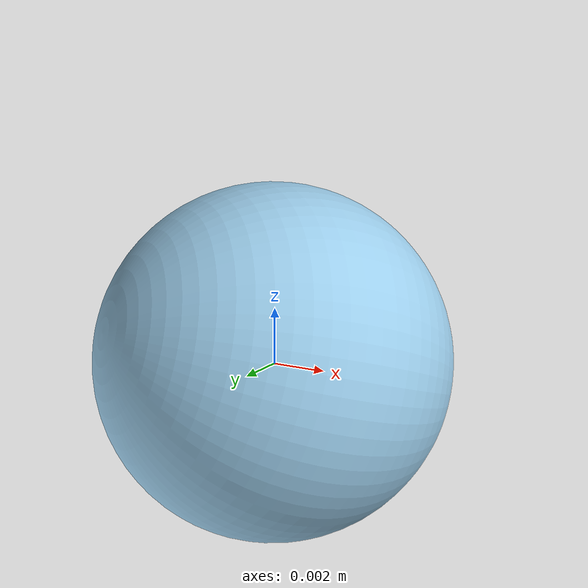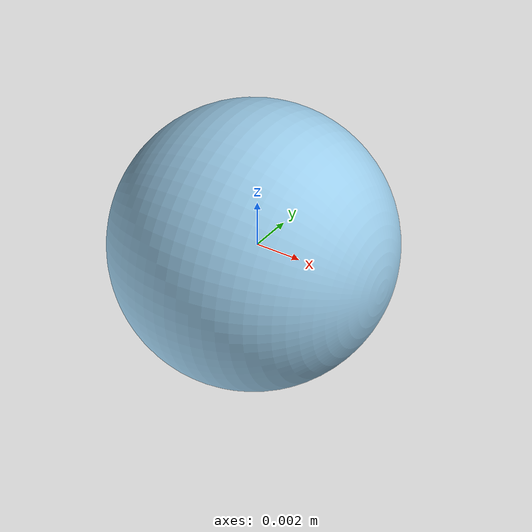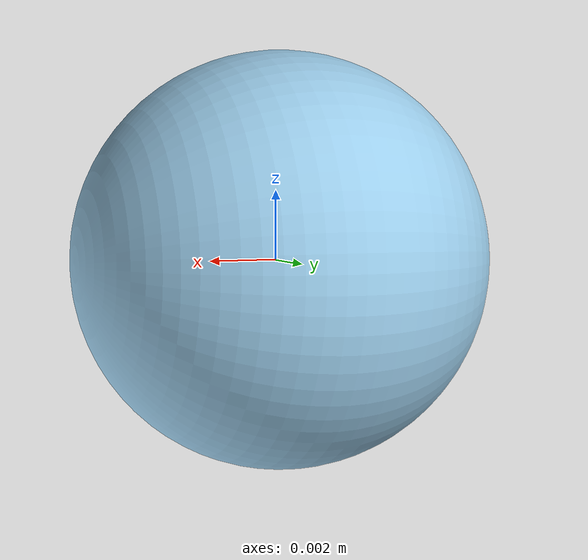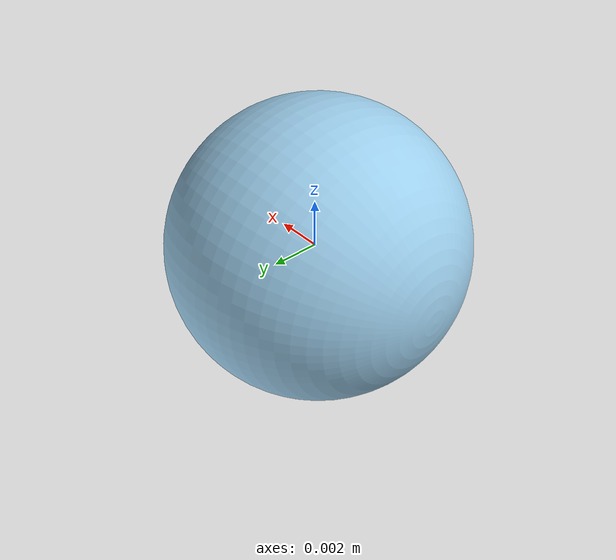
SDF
<sdf version="1.6">
<model name="onshape">
<link name="ball">
<frame name="ball_frame"><pose>0 0 0 0 -0 0</pose></frame>
<visual name="ball_0_ball_visual">
<pose>-0.00013690318155568093061 -7.9041084973141551018e-05 -1.0639948123947196024e-12 0 -0 0</pose>
<geometry>
<mesh><uri>file://ball.stl</uri></mesh>
</geometry>
<material><ambient>0.61568627450980395466 0.81176470588235294379 0.92941176470588238168 1</ambient><diffuse>0.61568627450980395466 0.81176470588235294379 0.92941176470588238168 1</diffuse><specular>0.1 0.1 0.1 1</specular><emissive>0 0 0 0</emissive></material>
</visual>
<collision name="ball_0_ball_visual">
<pose>-0.00013690318155568093061 -7.9041084973141551018e-05 -1.0639948123947196024e-12 0 -0 0</pose>
<geometry>
<mesh><uri>file://ball/ball.stl</uri></mesh>
</geometry>
</collision>
<inertial>
<pose frame="ball_frame">-0.00013690318155568093061 -7.9041084973141252862e-05 -1.0639948123947196024e-12 0 0 0</pose>
<mass>3.3258994226003960287e-05</mass>
<inertia><ixx>7.3539238593270916795e-10</ixx><ixy>0</ixy><ixz>0</ixz><iyy>7.3539238593270916795e-10</iyy><iyz>0</iyz><izz>7.3539238593270916795e-10</izz></inertia>
</inertial>
</link>

</model>
</sdf>
